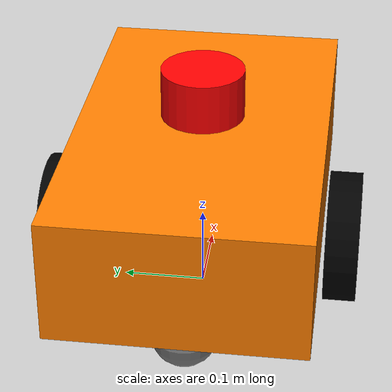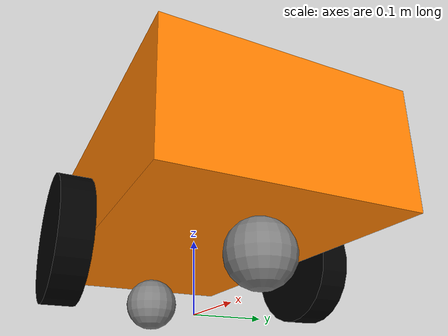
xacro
<?xml version="1.0"?>
<robot name="diff_drive_robot" xmlns:xacro="http://www.ros.org/wiki/xacro">

  <xacro:property name="PI" value="3.1415926535897931"/>
  <xacro:property name="chassis_length" value="0.5"/>
  <xacro:property name="chassis_width" value="0.3"/>
  <xacro:property name="chassis_height" value="0.15"/>
  <xacro:property name="wheel_radius" value="0.08"/>
  <xacro:property name="wheel_width" value="0.04"/>
  <xacro:property name="wheel_separation" value="0.35"/>
  <xacro:property name="caster_radius" value="0.04"/>

  <link name="base_link"/>
  <link name="base_footprint"/>

  <joint name="base_footprint_joint" type="fixed">
    <parent link="base_footprint"/>
    <child link="base_link"/>
    <origin xyz="0 0 ${wheel_radius}" rpy="0 0 0"/>
  </joint>

  <!-- Chassis -->
  <link name="chassis">
    <visual>
      <origin xyz="0 0 0" rpy="0 0 0"/>
      <geometry>
        <box size="${chassis_length} ${chassis_width} ${chassis_height}"/>
      </geometry>
      <material name="orange">
        <color rgba="1.0 0.5 0.0 1.0"/>
      </material>
    </visual>
    <collision>
      <origin xyz="0 0 0" rpy="0 0 0"/>
      <geometry>
        <box size="${chassis_length} ${chassis_width} ${chassis_height}"/>
      </geometry>
    </collision>
    <inertial>
      <origin xyz="0 0 0" rpy="0 0 0"/>
      <mass value="5.0"/>
      <inertia
        ixx="0.04688" ixy="0.0" ixz="0.0"
        iyy="0.11354" iyz="0.0"
        izz="0.14167"/>
    </inertial>
  </link>

  <joint name="chassis_joint" type="fixed">
    <parent link="base_link"/>
    <child link="chassis"/>
    <origin xyz="0 0 ${chassis_height/2}" rpy="0 0 0"/>
  </joint>

  <!-- Left Wheel -->
  <link name="left_wheel">
    <visual>
      <origin xyz="0 0 0" rpy="${PI/2} 0 0"/>
      <geometry>
        <cylinder radius="${wheel_radius}" length="${wheel_width}"/>
      </geometry>
      <material name="black">
        <color rgba="0.0 0.0 0.0 1.0"/>
      </material>
    </visual>
    <collision>
      <origin xyz="0 0 0" rpy="${PI/2} 0 0"/>
      <geometry>
        <cylinder radius="${wheel_radius}" length="${wheel_width}"/>
      </geometry>
    </collision>
    <inertial>
      <origin xyz="0 0 0" rpy="${PI/2} 0 0"/>
      <mass value="0.5"/>
      <inertia
        ixx="0.0016"    ixy="0.0" ixz="0.0"
        iyy="0.000867"  iyz="0.0"
        izz="0.000867"/>
    </inertial>
  </link>

  <joint name="left_wheel_joint" type="continuous">
    <parent link="base_link"/>
    <child link="left_wheel"/>
    <origin xyz="0 ${wheel_separation/2} 0" rpy="0 0 0"/>
    <axis xyz="0 1 0"/>
    <dynamics damping="0.01" friction="0.01"/>
  </joint>

  <!-- Right Wheel -->
  <link name="right_wheel">
    <visual>
      <origin xyz="0 0 0" rpy="${PI/2} 0 0"/>
      <geometry>
        <cylinder radius="${wheel_radius}" length="${wheel_width}"/>
      </geometry>
      <material name="black">
        <color rgba="0.0 0.0 0.0 1.0"/>
      </material>
    </visual>
    <collision>
      <origin xyz="0 0 0" rpy="${PI/2} 0 0"/>
      <geometry>
        <cylinder radius="${wheel_radius}" length="${wheel_width}"/>
      </geometry>
    </collision>
    <inertial>
      <!-- Same fix as left wheel -->
      <origin xyz="0 0 0" rpy="${PI/2} 0 0"/>
      <mass value="0.5"/>
      <inertia
        ixx="0.0016"    ixy="0.0" ixz="0.0"
        iyy="0.000867"  iyz="0.0"
        izz="0.000867"/>
    </inertial>
  </link>

  <joint name="right_wheel_joint" type="continuous">
    <parent link="base_link"/>
    <child link="right_wheel"/>
    <origin xyz="0 ${-wheel_separation/2} 0" rpy="0 0 0"/>
    <axis xyz="0 1 0"/>
    <dynamics damping="0.01" friction="0.01"/>
  </joint>

  <!-- Front Caster Wheel -->
  <link name="caster_wheel">
    <visual>
      <origin xyz="0 0 0" rpy="0 0 0"/>
      <geometry><sphere radius="${caster_radius}"/></geometry>
      <material name="gray"><color rgba="0.5 0.5 0.5 1.0"/></material>
    </visual>
    <collision>
      <origin xyz="0 0 0" rpy="0 0 0"/>
      <geometry><sphere radius="${caster_radius}"/></geometry>
    </collision>
    <inertial>
      <origin xyz="0 0 0" rpy="0 0 0"/>
      <mass value="0.1"/>
      <!-- Sphere inertia: 2mr²/5 = 2*0.1*0.0016/5 = 0.000064 -->
      <inertia
        ixx="0.000064" ixy="0.0" ixz="0.0"
        iyy="0.000064" iyz="0.0"
        izz="0.000064"/>
    </inertial>
  </link>

  <joint name="caster_wheel_joint" type="fixed">
    <parent link="base_link"/>
    <child link="caster_wheel"/>
    <origin xyz="${chassis_length/3} 0 ${-wheel_radius + caster_radius}" rpy="0 0 0"/>
  </joint>

  <!-- Rear Caster Wheel -->
  <link name="rear_caster_wheel">
    <visual>
      <origin xyz="0 0 0" rpy="0 0 0"/>
      <geometry><sphere radius="${caster_radius}"/></geometry>
      <material name="gray"><color rgba="0.5 0.5 0.5 1.0"/></material>
    </visual>
    <collision>
      <origin xyz="0 0 0" rpy="0 0 0"/>
      <geometry><sphere radius="${caster_radius}"/></geometry>
    </collision>
    <inertial>
      <origin xyz="0 0 0" rpy="0 0 0"/>
      <mass value="0.1"/>
      <inertia
        ixx="0.000064" ixy="0.0" ixz="0.0"
        iyy="0.000064" iyz="0.0"
        izz="0.000064"/>
    </inertial>
  </link>

  <joint name="rear_caster_wheel_joint" type="fixed">
    <parent link="base_link"/>
    <child link="rear_caster_wheel"/>
    <origin xyz="${-chassis_length/3} 0 ${-wheel_radius + caster_radius}" rpy="0 0 0"/>
  </joint>

  <!-- LiDAR -->
  <link name="lidar_link">
    <visual>
      <origin xyz="0 0 0" rpy="0 0 0"/>
      <geometry><cylinder radius="0.05" length="0.06"/></geometry>
      <material name="red"><color rgba="1.0 0.0 0.0 1.0"/></material>
    </visual>
    <collision>
      <origin xyz="0 0 0" rpy="0 0 0"/>
      <geometry><cylinder radius="0.05" length="0.06"/></geometry>
    </collision>
    <inertial>
      <origin xyz="0 0 0" rpy="0 0 0"/>
      <mass value="0.2"/>
      <inertia
        ixx="0.000117" ixy="0.0" ixz="0.0"
        iyy="0.000117" iyz="0.0"
        izz="0.00025"/>
    </inertial>
  </link>

  <joint name="lidar_joint" type="fixed">
    <parent link="chassis"/>
    <child link="lidar_link"/>
    <origin xyz="0 0 ${chassis_height/2 + 0.06/2 + 0.01}" rpy="0 0 0"/>
  </joint>

  <!-- ==================== Gazebo Plugins ==================== -->

  <gazebo>
    <plugin filename="gz-sim-diff-drive-system" name="gz::sim::systems::DiffDrive">
      <left_joint>left_wheel_joint</left_joint>
      <right_joint>right_wheel_joint</right_joint>
      <wheel_separation>${wheel_separation}</wheel_separation>
      <wheel_radius>${wheel_radius}</wheel_radius>
      <odom_publish_frequency>50</odom_publish_frequency>
      <max_linear_acceleration>1.0</max_linear_acceleration>
      <max_angular_acceleration>2.0</max_angular_acceleration>
      <max_linear_velocity>0.5</max_linear_velocity>
      <max_angular_velocity>1.0</max_angular_velocity>
      <topic>cmd_vel</topic>
      <odom_topic>odom</odom_topic>
      <tf_topic>tf</tf_topic>
      <frame_id>odom</frame_id>
      <child_frame_id>base_footprint</child_frame_id>
    </plugin>
  </gazebo>

  <!-- LiDAR Plugin -->
  <gazebo reference="lidar_link">
    <sensor name="lidar" type="gpu_lidar">
      <pose>0 0 0 0 0 0</pose>
      <topic>scan</topic>
      <update_rate>10</update_rate>
      <lidar>
        <scan>
          <horizontal>
            <samples>360</samples>
            <resolution>1</resolution>
            <min_angle>-${PI}</min_angle>
            <max_angle>${PI}</max_angle>
          </horizontal>
        </scan>
        <range>
          <min>0.1</min>
          <max>10.0</max>
          <resolution>0.01</resolution>
        </range>
        <noise>
          <type>gaussian</type>
          <mean>0.0</mean>
          <stddev>0.01</stddev>
        </noise>
      </lidar>
      <alwaysOn>1</alwaysOn>
      <visualize>true</visualize>
    </sensor>
  </gazebo>

  <gazebo>
    <plugin filename="gz-sim-joint-state-publisher-system"
            name="gz::sim::systems::JointStatePublisher">
      <joint_name>left_wheel_joint</joint_name>
      <joint_name>right_wheel_joint</joint_name>
    </plugin>
  </gazebo>

  <gazebo>
    <plugin filename="gz-sim-pose-publisher-system"
            name="gz::sim::systems::PosePublisher">
      <publish_link_pose>true</publish_link_pose>
      <use_pose_vector_msg>true</use_pose_vector_msg>
      <static_publisher>true</static_publisher>
      <static_update_frequency>1</static_update_frequency>
    </plugin>
  </gazebo>

  <!-- Drive wheels: high friction, firm contact -->
  <gazebo reference="left_wheel">
    <material>Gazebo/Black</material>
    <surface>
      <friction>
        <ode>
          <mu>1.5</mu>
          <mu2>1.5</mu2>
          <slip1>0.0</slip1>
          <slip2>0.0</slip2>
        </ode>
      </friction>
      <contact>
        <ode>
          <kp>1000000.0</kp>
          <kd>1.0</kd>
          <min_depth>0.001</min_depth>
        </ode>
      </contact>
    </surface>
  </gazebo>

  <gazebo reference="right_wheel">
    <material>Gazebo/Black</material>
    <surface>
      <friction>
        <ode>
          <mu>1.5</mu>
          <mu2>1.5</mu2>
          <slip1>0.0</slip1>
          <slip2>0.0</slip2>
        </ode>
      </friction>
      <contact>
        <ode>
          <kp>1000000.0</kp>
          <kd>1.0</kd>
          <min_depth>0.001</min_depth>
        </ode>
      </contact>
    </surface>
  </gazebo>

  <!-- Caster wheels: zero friction, high damping -->
  <gazebo reference="caster_wheel">
    <material>Gazebo/Gray</material>
    <surface>
      <friction>
        <ode>
          <mu>0.0</mu>
          <mu2>0.0</mu2>
        </ode>
      </friction>
      <contact>
        <ode>
          <kp>1000000.0</kp>
          <kd>100.0</kd>
          <min_depth>0.001</min_depth>
        </ode>
      </contact>
    </surface>
  </gazebo>

  <gazebo reference="rear_caster_wheel">
    <material>Gazebo/Gray</material>
    <surface>
      <friction>
        <ode>
          <mu>0.0</mu>
          <mu2>0.0</mu2>
        </ode>
      </friction>
      <contact>
        <ode>
          <kp>1000000.0</kp>
          <kd>100.0</kd>
          <min_depth>0.001</min_depth>
        </ode>
      </contact>
    </surface>
  </gazebo>

  <gazebo reference="chassis">
    <material>Gazebo/Orange</material>
  </gazebo>

  <gazebo reference="lidar_link">
    <material>Gazebo/Red</material>
  </gazebo>

</robot>
